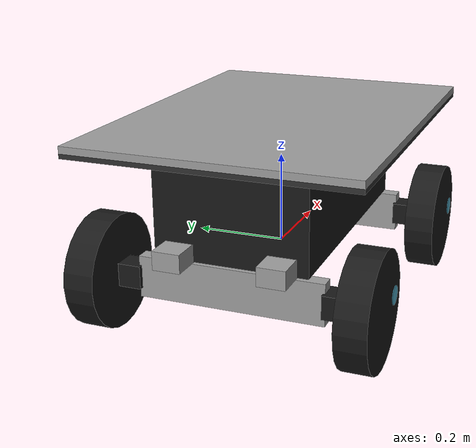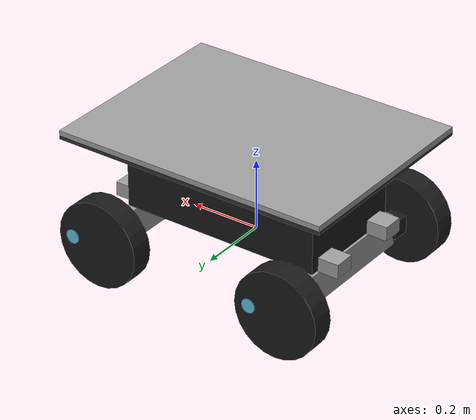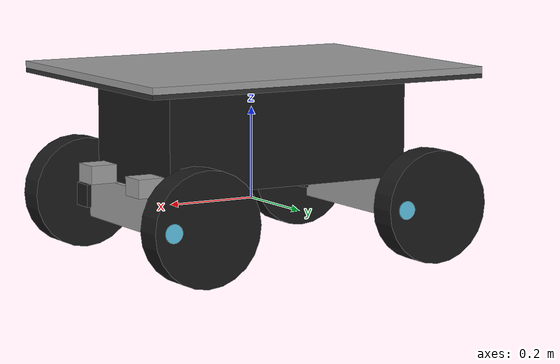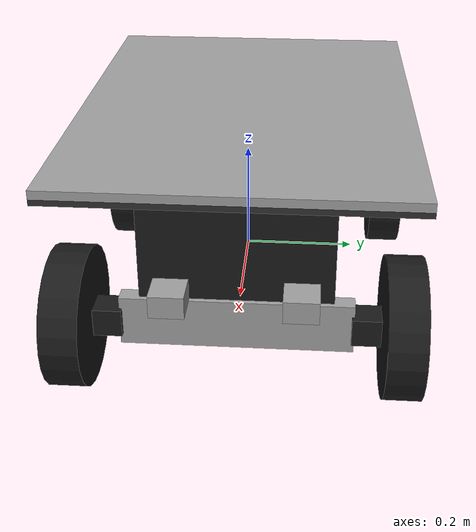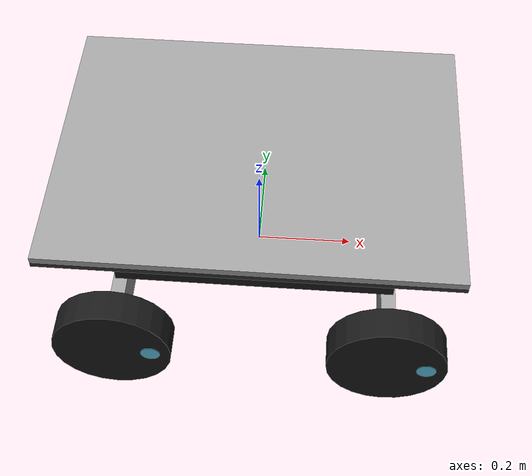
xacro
<?xml version="1.0"?>
<robot name="Chasi_MarkII" xmlns:xacro="http://ros.org/wiki/xacro">
  <xacro:arg name="add_payload" default="false"/>
  <xacro:arg name="use_sick_mrs1000" default="false"/>
  <xacro:arg name="use_realsense_d435" default="false"/>
  <xacro:arg name="use_velodyne_hdl32" default="false"/>
  <xacro:arg name="use_velodyne_puck_lite" default="false"/>
  <xacro:arg name="use_ouster_os1_16" default="false"/>
  <xacro:arg name="use_ouster_os1_32" default="false"/>
  <xacro:arg name="use_ouster_os1_64" default="false"/>
  <xacro:arg name="use_imu" default="false"/>
  <xacro:arg name="use_gps" default="false"/>

  <xacro:property name="use_sick_mrs1000" value="$(arg use_sick_mrs1000)" />
  <xacro:property name="use_realsense_d435" value="$(arg use_realsense_d435)" />
  <xacro:property name="use_velodyne_hdl32" value="$(arg use_velodyne_hdl32)" />
  <xacro:property name="use_velodyne_puck_lite" value="$(arg use_velodyne_puck_lite)" />
  <xacro:property name="use_ouster_os1_16" value="$(arg use_ouster_os1_16)" />
  <xacro:property name="use_ouster_os1_32" value="$(arg use_ouster_os1_32)" />
  <xacro:property name="use_ouster_os1_64" value="$(arg use_ouster_os1_64)" />
  <xacro:property name="use_imu" value="$(arg use_imu)" />
  <xacro:property name="use_gps" value="$(arg use_gps)" />

  <xacro:include filename="$(find arti_chasi_mark2)/urdf/arti_chasi_mark2.urdf.xacro" />
  <xacro:Chasi_MarkII
  	add_payload="$(arg add_payload)"
  	use_sick_mrs1000="${use_sick_mrs1000}"
  	use_realsense_d435="${use_realsense_d435}"
  	use_velodyne_hdl32="${use_velodyne_hdl32}"
  	use_velodyne_puck_lite="${use_velodyne_puck_lite}"
    use_ouster_os1_16="${use_ouster_os1_16}"
    use_ouster_os1_32="${use_ouster_os1_32}"
  	use_ouster_os1_64="${use_ouster_os1_64}"
    use_imu="${use_imu}"
    use_gps="${use_gps}"
  	/>
</robot>

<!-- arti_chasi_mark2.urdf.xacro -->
<robot xmlns:xacro="http://ros.org/wiki/xacro">
  <!-- Add general macros -->
  <xacro:include filename="$(find arti_chasi_mark2)/urdf/general_macros.urdf.xacro"/>

  <xacro:macro name="Chasi_MarkII" params="add_payload use_sick_mrs1000 use_realsense_d435 use_velodyne_hdl32 use_velodyne_puck_lite use_ouster_os1_16 use_ouster_os1_32 use_ouster_os1_64 use_imu use_gps">

    <material name="arti_black">
      <color rgba="0.1 0.1 0.1 1.0"/>
    </material>

    <material name="arti_blue">
      <color rgba="0.365 0.769 0.898 1.0"/>
    </material>

    <!-- Main Links -->

    <link name="base_link"> <!-- Note: if you set a null_inertial also for the base_link, the robot explodes for some reason -->
    </link>

    <link name="base_footprint">
      <inertial>  <!-- for some reason I need this inertial (if I choose null_inertial, the robot explodes and if no inertial set, the robot doesn't spawn in Gazebo) -->
        <mass value="0.01" />
        <inertia  ixx="0.0" ixy="0.0"  ixz="0.0"  iyy="0.0"  iyz="0.0"  izz="0.0" />
      </inertial>
    </link>

    <joint name="base_link_to_base_footprint" type="fixed">
      <parent link="base_link"/>
      <child link="base_footprint"/>
      <origin rpy="0 0 0" xyz="0 0 -0.1225"/>
    </joint>

    <!-- Body -->

    <link name="payload_plate">
      <visual>
        <geometry>
          <box size="0.80 0.60 0.01"/>
        </geometry>
        <material name="grey">
          <color rgba="0.19 0.19 0.19 1.0"/>
        </material>
      </visual>
      <collision>
        <geometry>
          <box size="0.8 0.6 0.01"/>
        </geometry>
      </collision>
      <xacro:solid_cuboid_inertial
              width="0.80" depth="0.60"
              height="0.01" mass="0.5">
        <origin xyz="0.0 0.0 0.0"/>
      </xacro:solid_cuboid_inertial>
      <visual>
        <origin xyz="0.0 0.0 0.0125"/>
        <geometry>
          <box size="0.8 0.6 0.015"/>
        </geometry>
        <material name="light_grey">
          <color rgba="0.627 0.627 0.627 1"/>
        </material>
      </visual>
      <collision>
        <origin xyz="0.0 0.0 0.0125"/>
        <geometry>
          <box size="0.8 0.6 0.015"/>
        </geometry>
      </collision>
      <xacro:solid_cuboid_inertial
              width="0.80" depth="0.60"
              height="0.015" mass="0.5">
        <origin xyz="0.0 0.0 0.0125"/>
      </xacro:solid_cuboid_inertial>
    </link>

    <joint name="payload_plate_joint" type="fixed">
      <parent link="base_link"/>
      <child link="payload_plate"/>
      <origin xyz="0.0 0.0 0.275"/>
    </joint>

    <link name="body">
      <xacro:solid_cuboid_inertial
              width="0.58" depth="0.33"
              height="0.225" mass="1.0">
        <origin xyz="0.0 0.0 0.0"/>
      </xacro:solid_cuboid_inertial>
      <visual>
        <geometry>
          <box size="0.58 0.33 0.225"/>
        </geometry>
        <material name="arti_black"/>
      </visual>
      <collision>
        <geometry>
          <box size="0.58 0.33 0.225"/>
        </geometry>
      </collision>
    </link>

    <joint name="body_joint" type="fixed">
      <parent link="payload_plate"/>
      <child link="body"/>
      <origin xyz="0.0 0.0 -0.115"/>
    </joint>

    <gazebo reference="body">
      <material>Gazebo/Black</material>
    </gazebo>

    <link name="chassis">
      <xacro:solid_cuboid_inertial
              width="0.7" depth="0.11"
              height="0.065" mass="0.25">
        <origin xyz="0.0 0.11 0.065"/>
      </xacro:solid_cuboid_inertial>
      <xacro:solid_cuboid_inertial
              width="0.7" depth="0.06"
              height="0.04" mass="0.2">
        <origin xyz="0.0 -0.11 0.065"/>
      </xacro:solid_cuboid_inertial>
      <xacro:solid_cuboid_inertial
              width="0.03" depth="0.4"
              height="0.09" mass="0.2">
        <origin xyz="0.28 0.0 0.0"/>
      </xacro:solid_cuboid_inertial>
      <xacro:solid_cuboid_inertial
              width="0.03" depth="0.4"
              height="0.09" mass="0.2">
        <origin xyz="-0.28 0.0 0.0"/>
      </xacro:solid_cuboid_inertial>
      <visual>
        <origin xyz="0.0 0.11 0.065"/>
        <geometry>
          <box size="0.7 0.06 0.04"/>
        </geometry>
        <material name="light_grey">
          <color rgba="0.627 0.627 0.627 1"/>
        </material>
      </visual>
      <collision>
        <origin xyz="0.0 0.11 0.065"/>
        <geometry>
          <box size="0.7 0.06 0.04"/>
        </geometry>
      </collision>
      <visual>
        <origin xyz="0.0 -0.11 0.065"/>
        <geometry>
          <box size="0.7 0.06 0.04"/>
        </geometry>
        <material name="light_grey">
          <color rgba="0.627 0.627 0.627 1"/>
        </material>
      </visual>
      <collision>
        <origin xyz="0.0 -0.11 0.065"/>
        <geometry>
          <box size="0.7 0.06 0.04"/>
        </geometry>
      </collision>
      <visual>
        <origin xyz="0.28 0.0 0.0"/>
        <geometry>
          <box size="0.03 0.4 0.09"/>
        </geometry>
        <material name="light_grey">
          <color rgba="0.627 0.627 0.627 1"/>
        </material>
      </visual>
      <collision>
        <origin xyz="0.28 0.0 0.0"/>
        <geometry>
          <box size="0.03 0.4 0.09"/>
        </geometry>
      </collision>
      <visual>
        <origin xyz="-0.28 0.0 0.0"/>
        <geometry>
          <box size="0.03 0.4 0.09"/>
        </geometry>
        <material name="light_grey">
          <color rgba="0.627 0.627 0.627 1"/>
        </material>
      </visual>
      <collision>
        <origin xyz="-0.28 0.0 0.0"/>
        <geometry>
          <box size="0.03 0.4 0.09"/>
        </geometry>
      </collision>
    </link>

    <joint name="chassis_joint" type="fixed">
      <parent link="base_link"/>
      <child link="chassis"/>
      <origin xyz="0.0 0.0 0.0"/>
    </joint>

    <xacro:if value="${add_payload}">
      <!-- Add payload -->
      <xacro:include filename="$(find arti_chasi_mark2)/urdf/payload.urdf.xacro"/>
    </xacro:if>

    <!-- Wheels -->
    <xacro:include filename="$(find arti_chasi_mark2)/urdf/wheels.urdf.xacro"/>

    <!-- Sensors -->

    <!-- Add Gazebo plugin to publish ground truth within the Gazebo simulation -->
    <xacro:include filename="$(find arti_chasi_mark2)/urdf/sensors/gazebo_ground_truth.urdf.xacro"/>

    <xacro:if value="${use_sick_mrs1000}">
      <!-- Add SICK MRS1000 -->
      <xacro:include filename="$(find arti_chasi_mark2)/urdf/sensors/SICK_MRS1000.urdf.xacro"/>
    </xacro:if>

    <xacro:if value="${use_realsense_d435}">
      <!-- Add Realsense D435 -->
      <xacro:include filename="$(find arti_chasi_mark2)/urdf/sensors/RealSense_D435.urdf.xacro"/>
    </xacro:if>

    <xacro:if value="${use_velodyne_hdl32}">
      <!-- Add Velodyne HDL32 -->
      <xacro:include filename="$(find arti_chasi_mark2)/urdf/sensors/Velodyne_HDL32.urdf.xacro"/>
    </xacro:if>

    <xacro:if value="${use_velodyne_puck_lite}">
      <!-- Add Velodyne Puck Lite -->
      <xacro:include filename="$(find arti_chasi_mark2)/urdf/sensors/Velodyne_Puck_Lite.urdf.xacro"/>
    </xacro:if>

    <xacro:if value="${use_ouster_os1_16}">
      <!-- Add Ouster OS1-16 -->
      <xacro:include filename="$(find arti_chasi_mark2)/urdf/sensors/Ouster_OS1_16.urdf.xacro"/>
    </xacro:if>

    <xacro:if value="${use_ouster_os1_32}">
      <!-- Add Ouster OS1-32 -->
      <xacro:include filename="$(find arti_chasi_mark2)/urdf/sensors/Ouster_OS1_32.urdf.xacro"/>
    </xacro:if>

    <xacro:if value="${use_ouster_os1_64}">
      <!-- Add Ouster OS1-64 -->
      <xacro:include filename="$(find arti_chasi_mark2)/urdf/sensors/Ouster_OS1_64.urdf.xacro"/>
    </xacro:if>

    <xacro:if value="${use_imu}">
      <!-- Add IMU -->
      <xacro:include filename="$(find arti_chasi_mark2)/urdf/sensors/imu.urdf.xacro"/>
    </xacro:if>

    <xacro:if value="${use_gps}">
      <!-- Add GPS -->
      <xacro:include filename="$(find arti_chasi_mark2)/urdf/sensors/gps.urdf.xacro"/>
    </xacro:if>

  </xacro:macro>
</robot>

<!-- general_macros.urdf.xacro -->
<robot xmlns:xacro="http://ros.org/wiki/xacro" name="general_macros">

  <!-- Inertia of a solid cuboid. Width is measured along the x axis, depth
       along the y axis, and height along the z axis. -->
  <xacro:macro name="solid_cuboid_inertial"
               params="width depth height mass *origin">
    <inertial>
      <xacro:insert_block name="origin"/>
      <mass value="${mass}"/>
      <inertia ixx="${mass * (depth * depth + height * height) / 12}"
               ixy="0" ixz="0"
               iyy="${mass * (width * width + height * height) / 12}"
               iyz="0"
               izz="${mass * (width * width + depth * depth) / 12}"/>
    </inertial>
  </xacro:macro>

  <!-- Null inertial element. This is needed to make the model work with
       Gazebo. -->
  <xacro:macro name="null_inertial"> <!-- TODO: is this really needed or can I remove it? -->
    <inertial>
      <mass value="0.001"/>
      <inertia ixx="0.001" ixy="0" ixz="0" iyy="0.001" iyz="0" izz="0.001"/>
    </inertial>
  </xacro:macro>

</robot>

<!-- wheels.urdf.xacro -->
<robot xmlns:xacro="http://ros.org/wiki/xacro" name="chasi_wheels">

  <!-- Wheel properties -->
  <xacro:macro name="Chasi_MarkII_Wheel" params="name">
    <link name="${name}">
      <inertial>
        <origin xyz="0 0 0" />
        <mass value="2.637" />
        <inertia  ixx="0.02467" ixy="0" ixz="0" iyy="0.04411" iyz="0" izz="0.02467" />
      </inertial>
      <visual>
        <geometry>
          <cylinder length="0.065" radius="0.1225"/>
        </geometry>
        <material name="arti_black"/>
      </visual>
      <visual>
        <origin xyz="0.08 0 0.0325"/>
        <geometry>
          <cylinder length="0.001" radius="0.02"/>
        </geometry>
        <material name="arti_blue">
          <color rgba="0.365 0.769 0.898 1.0"/>
        </material>
      </visual>
      <collision>
        <origin xyz="0 0 0" rpy="0 0 0" />
        <geometry>
          <cylinder length="0.065" radius="0.1225"/>
        </geometry>
      </collision>
    </link>
  </xacro:macro>

  <gazebo reference="Chasi_MarkII_Wheel"> <!-- TODO: check for useful (and correct?) values -->
    <mu1 value="1000000.0"/>
    <mu2 value="1000000.0"/>
    <kp value="10000000.0" />
    <kd value="100.0" />
    <fdir1 value="1 0 0"/>
    <maxVel>5.0</maxVel>
    <minDepth>0.01</minDepth>
  </gazebo>

  <!-- Wheelhinges -->
  <link name="front_left_hinge">
    <inertial>
      <mass value="0.01" />
      <inertia  ixx="0.0" ixy="0.0"  ixz="0.0"  iyy="0.0"  iyz="0.0"  izz="0.0" />
    </inertial>
    <visual>
      <geometry>
        <box size="0.05 0.05 0.05"/>
      </geometry>
      <material name="arti_black"/>
    </visual>
    <xacro:null_inertial/>
  </link>

  <link name="front_right_hinge">
    <inertial>
      <mass value="0.01" />
      <inertia  ixx="0.0" ixy="0.0"  ixz="0.0"  iyy="0.0"  iyz="0.0"  izz="0.0" />
    </inertial>
    <visual>
      <geometry>
        <box size="0.05 0.05 0.05"/>
      </geometry>
      <material name="arti_black"/>
    </visual>
    <xacro:null_inertial/>
  </link>

  <link name="rear_left_hinge">
    <inertial>
      <mass value="0.01" />
      <inertia  ixx="0.0" ixy="0.0"  ixz="0.0"  iyy="0.0"  iyz="0.0"  izz="0.0" />
    </inertial>
    <visual>
      <geometry>
        <box size="0.05 0.05 0.05"/>
      </geometry>
      <material name="arti_black"/>
    </visual>
    <xacro:null_inertial/>
  </link>

  <link name="rear_right_hinge">
    <inertial>
      <mass value="0.01" />
      <inertia  ixx="0.0" ixy="0.0"  ixz="0.0"  iyy="0.0"  iyz="0.0"  izz="0.0" />
    </inertial>
    <visual>
      <geometry>
        <box size="0.05 0.05 0.05"/>
      </geometry>
      <material name="arti_black"/>
    </visual>
    <xacro:null_inertial/>
  </link>

  <joint name="front_left_hinge_joint" type="revolute">
    <parent link="base_link"/>
    <child link="front_left_hinge"/>
    <origin xyz="0.28 0.22 0.0"/>
    <axis xyz="0 0 1"/>
    <limit lower="-1.57075" upper="1.57075" effort="100" velocity="3.14159"/>
    <dynamics damping="1" friction="0.2"/> <!-- TODO: to be evaluated/tuned in Gazebo -->
  </joint>

  <joint name="front_right_hinge_joint" type="revolute">
    <parent link="base_link"/>
    <child link="front_right_hinge"/>
    <origin xyz="0.28 -0.22 0.0"/>
    <axis xyz="0 0 1"/>
    <limit lower="-1.57075" upper="1.57075" effort="100" velocity="3.14159"/>
    <dynamics damping="1" friction="0.2"/> <!-- TODO: to be evaluated/tuned in Gazebo -->
  </joint>

  <joint name="rear_left_hinge_joint" type="revolute">
    <parent link="base_link"/>
    <child link="rear_left_hinge"/>
    <origin xyz="-0.28 0.22 0.0"/>
    <axis xyz="0 0 1"/>
    <limit lower="-1.57075" upper="1.57075" effort="100" velocity="3.14159"/>
    <dynamics damping="1" friction="0.2"/> <!-- TODO: to be evaluated/tuned in Gazebo -->
  </joint>

  <joint name="rear_right_hinge_joint" type="revolute">
    <parent link="base_link"/>
    <child link="rear_right_hinge"/>
    <origin xyz="-0.28 -0.22 0.0"/>
    <axis xyz="0 0 1"/>
    <limit lower="-1.57075" upper="1.57075" effort="100" velocity="3.14159"/>
    <dynamics damping="1" friction="0.2"/> <!-- TODO: to be evaluated/tuned in Gazebo -->
  </joint>

  <xacro:Chasi_MarkII_Wheel name="front_left_wheel"/>
  <xacro:Chasi_MarkII_Wheel name="front_right_wheel"/>
  <xacro:Chasi_MarkII_Wheel name="rear_left_wheel"/>
  <xacro:Chasi_MarkII_Wheel name="rear_right_wheel"/>

  <gazebo reference="front_left_wheel">
    <material>Gazebo/Black</material>
  </gazebo>
  <gazebo reference="front_right_wheel">
    <material>Gazebo/Black</material>
  </gazebo>
  <gazebo reference="rear_left_wheel">
    <material>Gazebo/Black</material>
  </gazebo>
  <gazebo reference="rear_right_wheel">
    <material>Gazebo/Black</material>
  </gazebo>

  <!-- Add some wheel markers to the wheels to better visualize movement in Gazebo because I can only color a complete link -->
  <xacro:macro name="Wheel_Marker" params="name">
    <link name="${name}">
      <visual>
        <origin xyz="0.08 0 0.0325"/>
        <geometry>
          <cylinder length="0.002" radius="0.02"/>
        </geometry>
        <material name="arti_blue">
          <color rgba="0.365 0.769 0.898 1.0"/>
        </material>
      </visual>
    </link>
    <xacro:null_inertial/>
  </xacro:macro>

  <xacro:Wheel_Marker name="wheel_marker_front_left"/>
  <xacro:Wheel_Marker name="wheel_marker_front_right"/>
  <xacro:Wheel_Marker name="wheel_marker_rear_left"/>
  <xacro:Wheel_Marker name="wheel_marker_rear_right"/>

  <gazebo reference="wheel_marker_front_left">
    <material>Gazebo/Turquoise</material>
  </gazebo>
  <gazebo reference="wheel_marker_front_right">
    <material>Gazebo/Turquoise</material>
  </gazebo>
  <gazebo reference="wheel_marker_rear_left">
    <material>Gazebo/Turquoise</material>
  </gazebo>
  <gazebo reference="wheel_marker_rear_right">
    <material>Gazebo/Turquoise</material>
  </gazebo>

  <joint name="wheel_marker_joint1" type="fixed">
    <parent link="front_left_wheel"/>
    <child link="wheel_marker_front_left"/>
    <origin xyz="0.0 0.0 0.0"/>
  </joint>
  <joint name="wheel_marker_joint2" type="fixed">
    <parent link="front_right_wheel"/>
    <child link="wheel_marker_front_right"/>
    <origin xyz="0.0 0.0 0.0"/>
  </joint>
  <joint name="wheel_marker_joint3" type="fixed">
    <parent link="rear_left_wheel"/>
    <child link="wheel_marker_rear_left"/>
    <origin xyz="0.0 0.0 0.0"/>
  </joint>
  <joint name="wheel_marker_joint4" type="fixed">
    <parent link="rear_right_wheel"/>
    <child link="wheel_marker_rear_right"/>
    <origin xyz="0.0 0.0 0.0"/>
  </joint>

  <!-- wheel joints -->
  <joint name="front_left_wheel_joint" type="continuous">
    <parent link="front_left_hinge"/>
    <child link="front_left_wheel"/>
    <origin rpy="-1.57075 0 0" xyz="0.0 0.06 0.0"/>
    <axis xyz="0 0 1"/>
  </joint>

  <joint name="front_right_wheel_joint" type="continuous">
    <parent link="front_right_hinge"/>
    <child link="front_right_wheel"/>
    <origin rpy="1.57075 0 0" xyz="0.0 -0.06 0.0"/>
    <axis xyz="0 0 -1"/>
  </joint>

  <joint name="rear_left_wheel_joint" type="continuous">
    <parent link="rear_left_hinge"/>
    <child link="rear_left_wheel"/>
    <origin rpy="-1.57075 0 0" xyz="0.0 0.06 0.0"/>
    <axis xyz="0 0 1"/>
  </joint>

  <joint name="rear_right_wheel_joint" type="continuous">
    <parent link="rear_right_hinge"/>
    <child link="rear_right_wheel"/>
    <origin rpy="1.57075 0 0" xyz="0.0 -0.06 0.0"/>
    <axis xyz="0 0 -1"/>
  </joint>

  <!-- Define wheel hinge transmissions -->
  <transmission name="trans_front_left_hinge_joint">
    <type>transmission_interface/SimpleTransmission</type>
    <joint name="front_left_hinge_joint">
      <hardwareInterface>hardware_interface/EffortJointInterface</hardwareInterface>
    </joint>
    <actuator name="motor1">
      <hardwareInterface>hardware_interface/EffortJointInterface</hardwareInterface>
      <mechanicalReduction>1</mechanicalReduction>
    </actuator>
  </transmission>

  <transmission name="trans_front_right_hinge_joint">
    <type>transmission_interface/SimpleTransmission</type>
    <joint name="front_right_hinge_joint">
      <hardwareInterface>hardware_interface/EffortJointInterface</hardwareInterface>
    </joint>
    <actuator name="motor2">
      <hardwareInterface>hardware_interface/EffortJointInterface</hardwareInterface>
      <mechanicalReduction>1</mechanicalReduction>
    </actuator>
  </transmission>

  <transmission name="trans_rear_left_hinge_joint">
    <type>transmission_interface/SimpleTransmission</type>
    <joint name="rear_left_hinge_joint">
      <hardwareInterface>hardware_interface/EffortJointInterface</hardwareInterface>
    </joint>
    <actuator name="motor3">
      <hardwareInterface>hardware_interface/EffortJointInterface</hardwareInterface>
      <mechanicalReduction>1</mechanicalReduction>
    </actuator>
  </transmission>

  <transmission name="trans_rear_right_hinge_joint">
    <type>transmission_interface/SimpleTransmission</type>
    <joint name="rear_right_hinge_joint">
      <hardwareInterface>hardware_interface/EffortJointInterface</hardwareInterface>
    </joint>
    <actuator name="motor4">
      <hardwareInterface>hardware_interface/EffortJointInterface</hardwareInterface>
      <mechanicalReduction>1</mechanicalReduction>
    </actuator>
  </transmission>

  <!-- Define wheel transmissions -->
  <transmission name="trans_front_left_wheel_joint">
    <type>transmission_interface/SimpleTransmission</type>
    <joint name="front_left_wheel_joint">
      <hardwareInterface>hardware_interface/EffortJointInterface</hardwareInterface>
    </joint>
    <actuator name="motor1">
      <hardwareInterface>hardware_interface/EffortJointInterface</hardwareInterface>
      <mechanicalReduction>1</mechanicalReduction>
    </actuator>
  </transmission>

  <transmission name="trans_front_right_wheel_joint">
    <type>transmission_interface/SimpleTransmission</type>
    <joint name="front_right_wheel_joint">
      <hardwareInterface>hardware_interface/EffortJointInterface</hardwareInterface>
    </joint>
    <actuator name="motor2">
      <hardwareInterface>hardware_interface/EffortJointInterface</hardwareInterface>
      <mechanicalReduction>1</mechanicalReduction>
    </actuator>
  </transmission>

  <transmission name="trans_rear_left_wheel_joint">
    <type>transmission_interface/SimpleTransmission</type>
    <joint name="rear_left_wheel_joint">
      <hardwareInterface>hardware_interface/EffortJointInterface</hardwareInterface>
    </joint>
    <actuator name="motor3">
      <hardwareInterface>hardware_interface/EffortJointInterface</hardwareInterface>
      <mechanicalReduction>1</mechanicalReduction>
    </actuator>
  </transmission>

  <transmission name="trans_rear_right_wheel_joint">
    <type>transmission_interface/SimpleTransmission</type>
    <joint name="rear_right_wheel_joint">
      <hardwareInterface>hardware_interface/EffortJointInterface</hardwareInterface>
    </joint>
    <actuator name="motor4">
      <hardwareInterface>hardware_interface/EffortJointInterface</hardwareInterface>
      <mechanicalReduction>1</mechanicalReduction>
    </actuator>
  </transmission>

  <gazebo>
    <plugin name="gazebo_ros_control" filename="libgazebo_ros_control.so">
      <robotNamespace>/chasi</robotNamespace>
      <legacyModeNS>true</legacyModeNS>
    </plugin>
  </gazebo>

</robot>
